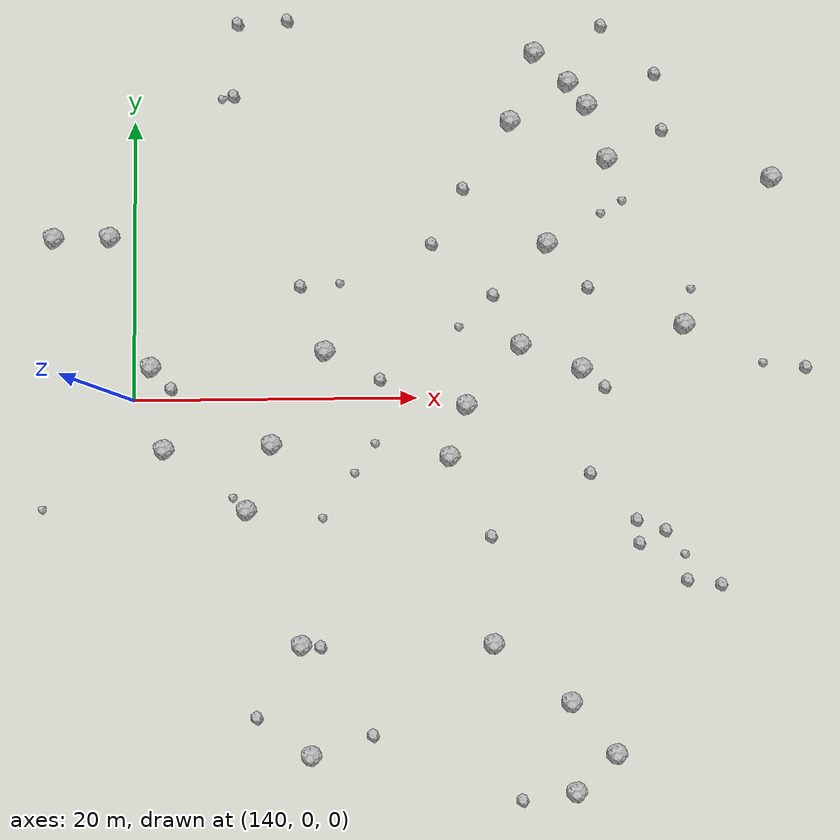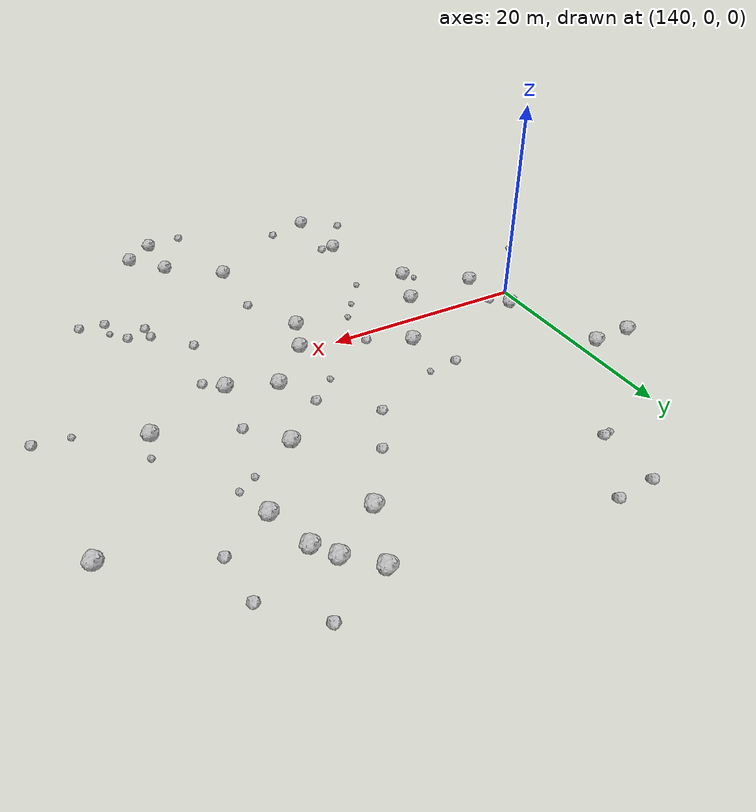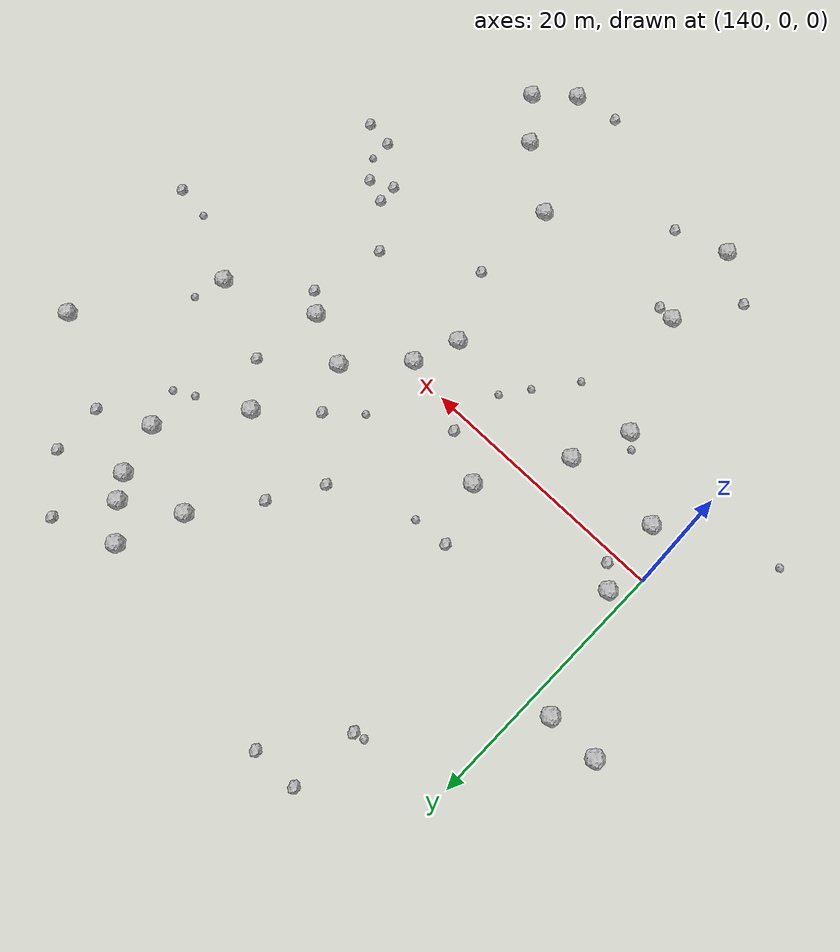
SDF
<sdf version="1.6">
 <world name="default">
  <include><uri>model://sun</uri></include>
  <model name="rock1_4_2">
   <include><uri>model://rock1</uri><pose>178.98965172127322 5.042738334316482 0.5 0 0 0</pose></include>
  </model>
  <model name="rock1_4_3">
   <include><uri>model://rock1</uri><pose>152.52882142079022 -24.75232220804355 0.5 0 0 0</pose></include>
  </model>
  <model name="rock1_4_4">
   <include><uri>model://rock1</uri><pose>149.7865299915112 -3.2171423782234356 0.5 0 0 0</pose></include>
  </model>
  <model name="rock1_4_5">
   <include><uri>model://rock1</uri><pose>172.36424301156575 20.87865933433229 0.5 0 0 0</pose></include>
  </model>
  <model name="rock1_4_6">
   <include><uri>model://rock1</uri><pose>173.72947140277967 16.98035822069029 0.5 0 0 0</pose></include>
  </model>
  <model name="rock1_4_7">
   <include><uri>model://rock1</uri><pose>148.03496358866832 -7.807260345009809 0.5 0 0 0</pose></include>
  </model>
  <model name="rock1_4_8">
   <include><uri>model://rock1</uri><pose>134.36021441078066 11.569603122272987 0.5 0 0 0</pose></include>
  </model>
  <model name="rock1_4_9">
   <include><uri>model://rock1</uri><pose>163.53968476539393 -0.5351596986863498 0.5 0 0 0</pose></include>
  </model>
  <model name="rock1_4_10">
   <include><uri>model://rock1</uri><pose>153.566956953749 3.350634312646264 0.5 0 0 0</pose></include>
  </model>
  <model name="rock1_4_11">
   <include><uri>model://rock1</uri><pose>151.85858030346378 -17.19018347891045 0.5 0 0 0</pose></include>
  </model>
  <model name="rock1_4_12">
   <include><uri>model://rock1</uri><pose>170.81002787104225 -27.368047865819264 0.5 0 0 0</pose></include>
  </model>
  <model name="rock1_4_13">
   <include><uri>model://rock1</uri><pose>168.65405890649453 24.745738654529532 0.5 0 0 0</pose></include>
  </model>
  <model name="rock1_4_14">
   <include><uri>model://rock1</uri><pose>171.04477800690506 22.563389377782777 0.5 0 0 0</pose></include>
  </model>
  <model name="rock1_4_15">
   <include><uri>model://rock1</uri><pose>170.57431183137183 -21.2554911758541 0.5 0 0 0</pose></include>
  </model>
  <model name="rock1_4_16">
   <include><uri>model://rock1</uri><pose>173.63884730240878 -24.811090293405044 0.5 0 0 0</pose></include>
  </model>
  <model name="rock1_4_17">
   <include><uri>model://rock1</uri><pose>142.2366938543299 -3.501474203737004 0.5 0 0 0</pose></include>
  </model>
  <model name="rock1_4_18">
   <include><uri>model://rock1</uri><pose>166.86796030896093 19.76032341119116 0.5 0 0 0</pose></include>
  </model>
  <model name="rock1_4_19">
   <include><uri>model://rock1</uri><pose>167.39812252718045 3.6973157037041986 0.5 0 0 0</pose></include>
  </model>
  <model name="rock1_4_20">
   <include><uri>model://rock1</uri><pose>138.3394543420572 11.615409657490659 0.5 0 0 0</pose></include>
  </model>
  <model name="rock1_4_21">
   <include><uri>model://rock1</uri><pose>141.29069131072038 2.316036821423147 0.5 0 0 0</pose></include>
  </model>
  <model name="rock1_4_22">
   <include><uri>model://rock1</uri><pose>162.31521215921694 -4.152818228923344 0.5 0 0 0</pose></include>
  </model>
  <model name="rock1_4_23">
   <include><uri>model://rock1</uri><pose>171.6960008964806 1.9808446581442034 0.5 0 0 0</pose></include>
  </model>
  <model name="rock1_4_24">
   <include><uri>model://rock1</uri><pose>169.38177277484863 10.91863814198436 0.5 0 0 0</pose></include>
  </model>
  <model name="rock1_4_25">
   <include><uri>model://rock1</uri><pose>165.244546599172 -17.209580643074098 0.5 0 0 0</pose></include>
  </model>
  <model name="rock1_4_26">
   <include><uri>model://rock1</uri><pose>185.42168968398778 15.502831697319415 0.5 0 0 0</pose></include>
  </model>
  <model name="rock2_4_0">
   <include><uri>model://rock2</uri><pose>169.26814623023867 10.838056812834665 0.3 0 0 0</pose></include>
  </model>
  <model name="rock2_4_1">
   <include><uri>model://rock2</uri><pose>147.3848962922491 27.10411256555328 0.3 0 0 0</pose></include>
  </model>
  <model name="rock2_4_2">
   <include><uri>model://rock2</uri><pose>156.7816542993251 -23.438705940637384 0.3 0 0 0</pose></include>
  </model>
  <model name="rock2_4_3">
   <include><uri>model://rock2</uri><pose>187.51335774982113 1.9257741007275015 0.3 0 0 0</pose></include>
  </model>
  <model name="rock2_4_4">
   <include><uri>model://rock2</uri><pose>165.4823002478674 7.268915419096011 0.3 0 0 0</pose></include>
  </model>
  <model name="rock2_4_5">
   <include><uri>model://rock2</uri><pose>172.16962574496156 -5.417052406498236 0.3 0 0 0</pose></include>
  </model>
  <model name="rock2_4_6">
   <include><uri>model://rock2</uri><pose>148.7251254259683 -22.164527031576064 0.3 0 0 0</pose></include>
  </model>
  <model name="rock2_4_7">
   <include><uri>model://rock2</uri><pose>161.1624119198759 10.967150287403896 0.3 0 0 0</pose></include>
  </model>
  <model name="rock2_4_8">
   <include><uri>model://rock2</uri><pose>165.15735948414545 -9.77654706565865 0.3 0 0 0</pose></include>
  </model>
  <model name="rock2_4_9">
   <include><uri>model://rock2</uri><pose>181.1846247979113 -13.261086707954448 0.3 0 0 0</pose></include>
  </model>
  <model name="rock2_4_10">
   <include><uri>model://rock2</uri><pose>175.526403652669 -10.33945022856004 0.3 0 0 0</pose></include>
  </model>
  <model name="rock2_4_11">
   <include><uri>model://rock2</uri><pose>173.30457056760054 0.642386644445402 0.3 0 0 0</pose></include>
  </model>
  <model name="rock2_4_12">
   <include><uri>model://rock2</uri><pose>163.42958933924032 14.942282527412715 0.3 0 0 0</pose></include>
  </model>
  <model name="rock2_4_13">
   <include><uri>model://rock2</uri><pose>147.09249952695876 21.814320088406006 0.3 0 0 0</pose></include>
  </model>
  <model name="rock2_4_14">
   <include><uri>model://rock2</uri><pose>177.3805943020333 -9.456310084798957 0.3 0 0 0</pose></include>
  </model>
  <model name="rock2_4_15">
   <include><uri>model://rock2</uri><pose>157.42628330439146 1.3184206556293105 0.3 0 0 0</pose></include>
  </model>
  <model name="rock2_4_16">
   <include><uri>model://rock2</uri><pose>142.6803994349789 0.7918644522800165 0.3 0 0 0</pose></include>
  </model>
  <model name="rock2_4_17">
   <include><uri>model://rock2</uri><pose>178.82123183355333 -12.930277975009325 0.3 0 0 0</pose></include>
  </model>
  <model name="rock2_4_18">
   <include><uri>model://rock2</uri><pose>151.81854412468988 8.011229215686697 0.3 0 0 0</pose></include>
  </model>
  <model name="rock2_4_19">
   <include><uri>model://rock2</uri><pose>167.08511113788276 -27.955145056026748 0.3 0 0 0</pose></include>
  </model>
  <model name="rock2_4_20">
   <include><uri>model://rock2</uri><pose>177.7100615098537 19.07033930110444 0.3 0 0 0</pose></include>
  </model>
  <model name="rock2_4_21">
   <include><uri>model://rock2</uri><pose>172.21798792827613 7.744922192996476 0.3 0 0 0</pose></include>
  </model>
  <model name="rock2_4_22">
   <include><uri>model://rock2</uri><pose>153.17599714791317 -17.34526796753627 0.3 0 0 0</pose></include>
  </model>
  <model name="rock2_4_23">
   <include><uri>model://rock2</uri><pose>175.37618332120158 -8.720763548567685 0.3 0 0 0</pose></include>
  </model>
  <model name="rock2_4_24">
   <include><uri>model://rock2</uri><pose>177.26739777791366 23.168604979305854 0.3 0 0 0</pose></include>
  </model>
  <model name="rock2_4_25">
   <include><uri>model://rock2</uri><pose>173.4805819028421 26.733331558539447 0.3 0 0 0</pose></include>
  </model>
  <model name="rock2_4_26">
   <include><uri>model://rock2</uri><pose>150.94719130287442 27.320249999189066 0.3 0 0 0</pose></include>
  </model>
  <model name="rock3_4_0">
   <include><uri>model://rock3</uri><pose>178.6896969500682 -11.161306112009584 0.2 0 0 0</pose></include>
  </model>
  <model name="rock3_4_1">
   <include><uri>model://rock3</uri><pose>147.03553553827527 -6.952287397715381 0.2 0 0 0</pose></include>
  </model>
  <model name="rock3_4_2">
   <include><uri>model://rock3</uri><pose>157.0436694864256 -3.2060307763041855 0.2 0 0 0</pose></include>
  </model>
  <model name="rock3_4_3">
   <include><uri>model://rock3</uri><pose>154.62026135350098 8.183724739606646 0.2 0 0 0</pose></include>
  </model>
  <model name="rock3_4_4">
   <include><uri>model://rock3</uri><pose>153.328949371473 -8.420259235595722 0.2 0 0 0</pose></include>
  </model>
  <model name="rock3_4_5">
   <include><uri>model://rock3</uri><pose>179.52976773323311 7.567832893752438 0.2 0 0 0</pose></include>
  </model>
  <model name="rock3_4_6">
   <include><uri>model://rock3</uri><pose>174.76833780071183 13.96605141193794 0.2 0 0 0</pose></include>
  </model>
  <model name="rock3_4_7">
   <include><uri>model://rock3</uri><pose>133.650681336933 -7.661103461676941 0.2 0 0 0</pose></include>
  </model>
  <model name="rock3_4_8">
   <include><uri>model://rock3</uri><pose>184.52200146068003 2.2498963639936633 0.2 0 0 0</pose></include>
  </model>
  <model name="rock3_4_9">
   <include><uri>model://rock3</uri><pose>173.22778632506083 13.072888011059106 0.2 0 0 0</pose></include>
  </model>
  <model name="rock3_4_10">
   <include><uri>model://rock3</uri><pose>163.02796473578616 5.005923335593998 0.2 0 0 0</pose></include>
  </model>
  <model name="rock3_4_11">
   <include><uri>model://rock3</uri><pose>146.261001244074 21.603486332066282 0.2 0 0 0</pose></include>
  </model>
  <model name="rock3_4_12">
   <include><uri>model://rock3</uri><pose>155.5943169957328 -5.2791859166709685 0.2 0 0 0</pose></include>
  </model>
 </world>
</sdf>
